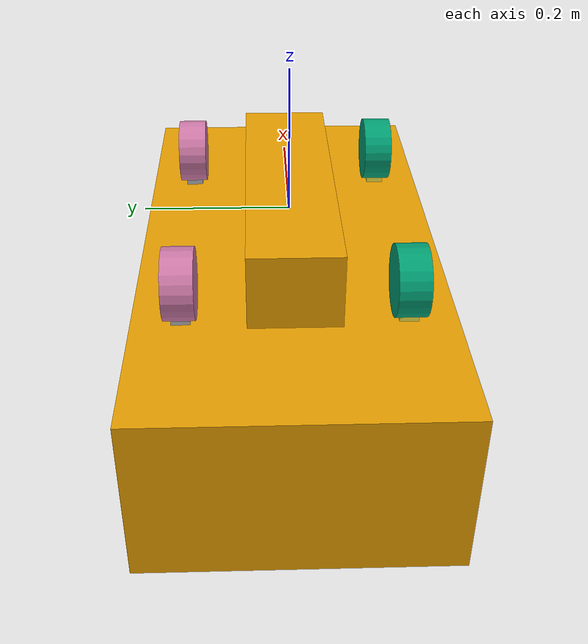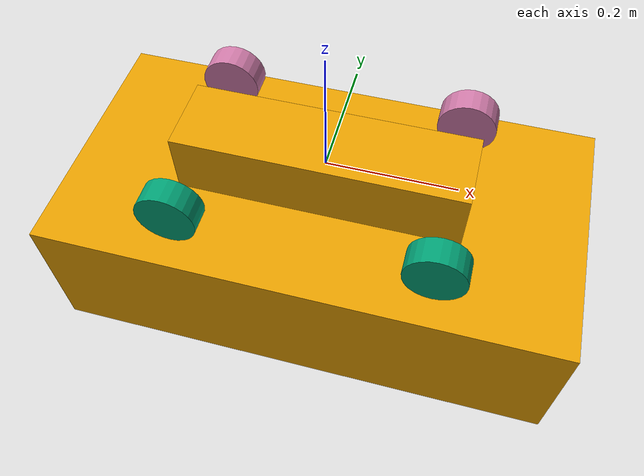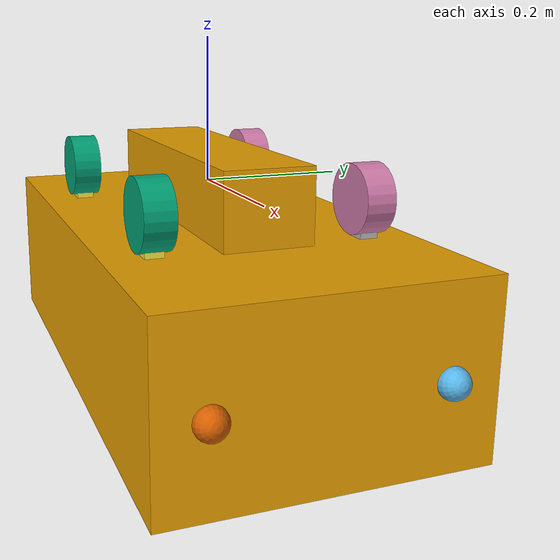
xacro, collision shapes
<?xml version="1.0"?>
<robot name="go2" xmlns:xacro="http://www.ros.org/wiki/xacro">

  <!-- Shared geometry: leg/joint constants, mesh materials, parametric leg macro. -->
  <xacro:include filename="$(find go2_description)/urdf/const.xacro"/>
  <xacro:include filename="$(find go2_description)/urdf/materials.xacro"/>
  <xacro:include filename="$(find go2_description)/urdf/leg.xacro"/>

  <!-- =======================================================================
       Physical constants
  ============================================================================ -->
  <xacro:property name="body_length"  value="0.440"/>   <!-- trunk X -->
  <xacro:property name="body_width"   value="0.060"/>   <!-- trunk half-width in Y -->
  <xacro:property name="body_height"  value="0.100"/>   <!-- trunk Z -->
  <xacro:property name="body_mass"    value="6.921"/>

  <!-- Full robot standing envelope including legs (Unitree Go2 official specs) -->
  <xacro:property name="stance_length"  value="0.700"/>  <!-- full X with legs -->
  <xacro:property name="stance_width"   value="0.310"/>  <!-- full Y with legs -->
  <xacro:property name="safety_length"  value="0.800"/>  <!-- +50 mm safety margin on each side -->
  <xacro:property name="safety_width"   value="0.410"/>  <!-- +50 mm safety margin on each side -->
  <xacro:property name="stance_height"  value="0.230"/>

  <!-- Nominal standing torso centre height from ground [m]. -->
  <xacro:property name="standing_height" value="0.28"/>

  <!-- Front-top sensor mount matching official Unitree Go2 radar_joint -->
  <xacro:property name="lidar_x" value="0.28945"/>
  <xacro:property name="lidar_y" value="0.0"/>
  <xacro:property name="lidar_z" value="-0.046825"/>
  <!-- Real Unitree driver frame measured from /utlidar/cloud to /utlidar/cloud_base. -->
  <xacro:property name="lidar_r" value="0.0"/>
  <xacro:property name="lidar_p" value="2.88000012056847"/>
  <xacro:property name="lidar_yaw" value="0.0"/>

  <link name="base_link">
    <collision>
      <origin xyz="0 0 0" rpy="0 0 0"/>
      <geometry>
        <!-- Rigid body torso footprint (full standing envelope is via the
             safety collision below and nav2 footprint parameters). -->
        <box size="${body_length} ${body_width*2} ${body_height}"/>
      </geometry>
    </collision>
    <!-- Safety envelope used by collision consumers that inspect URDF collision geometry. -->
    <collision>
      <origin xyz="0 0 ${-(standing_height - stance_height/2)}" rpy="0 0 0"/>
      <geometry>
        <box size="${safety_length} ${safety_width} ${stance_height}"/>
      </geometry>
    </collision>
  </link>

  <joint name="floating_base" type="fixed">
    <parent link="base_link"/>
    <child  link="trunk"/>
    <origin xyz="0 0 0" rpy="0 0 0"/>
  </joint>

  <link name="trunk">
    <visual>
      <origin xyz="0 0 0" rpy="0 0 0"/>
      <geometry>
        <mesh filename="package://go2_description/meshes/dae/base.dae" scale="1 1 1"/>
      </geometry>
    </visual>
    <inertial>
      <origin xyz="${trunk_com_x} ${trunk_com_y} ${trunk_com_z}" rpy="0 0 0"/>
      <mass value="${trunk_mass}"/>
      <inertia ixx="${trunk_ixx}" ixy="${trunk_ixy}" ixz="${trunk_ixz}"
               iyy="${trunk_iyy}" iyz="${trunk_iyz}"
               izz="${trunk_izz}"/>
    </inertial>
  </link>

  <xacro:leg name="rf" mirror="-1" mirror_dae="False" front_hind="1"  front_hind_dae="True"  parent="trunk" with_ros2_control="False"/>
  <xacro:leg name="lf" mirror="1"  mirror_dae="True"  front_hind="1"  front_hind_dae="True"  parent="trunk" with_ros2_control="False"/>
  <xacro:leg name="rh" mirror="-1" mirror_dae="False" front_hind="-1" front_hind_dae="False" parent="trunk" with_ros2_control="False"/>
  <xacro:leg name="lh" mirror="1"  mirror_dae="True"  front_hind="-1" front_hind_dae="False" parent="trunk" with_ros2_control="False"/>

  <joint name="base_link_to_imu" type="fixed">
    <parent link="base_link"/>
    <child  link="imu_link"/>
    <origin xyz="0 0 0" rpy="0 0 0"/>
  </joint>

  <link name="imu_link">
    <inertial>
      <mass value="0.001"/>
      <origin xyz="0 0 0" rpy="0 0 0"/>
      <inertia ixx="1e-7" ixy="0" ixz="0" iyy="1e-7" iyz="0" izz="1e-7"/>
    </inertial>
  </link>

  <joint name="base_link_to_lidar" type="fixed">
    <parent link="base_link"/>
    <child  link="lidar_link"/>
    <origin xyz="${lidar_x} ${lidar_y} ${lidar_z}" rpy="${lidar_r} ${lidar_p} ${lidar_yaw}"/>
  </joint>

  <link name="lidar_link">
    <visual>
      <origin xyz="0 0 0" rpy="0 0 0"/>
      <geometry>
        <cylinder radius="0.04" length="0.06"/>
      </geometry>
      <material name="lidar_black">
        <color rgba="0.05 0.05 0.05 1.0"/>
      </material>
    </visual>
    <inertial>
      <mass value="0.001"/>
      <origin xyz="0 0 0" rpy="0 0 0"/>
      <inertia ixx="1e-7" ixy="0" ixz="0" iyy="1e-7" iyz="0" izz="1e-7"/>
    </inertial>
  </link>

  <joint name="lidar_to_lidar_imu" type="fixed">
    <parent link="lidar_link"/>
    <child  link="lidar_imu_link"/>
    <origin xyz="-0.007698 -0.014655 0.00667" rpy="0 0 0"/>
  </joint>

  <link name="lidar_imu_link">
    <inertial>
      <mass value="0.001"/>
      <origin xyz="0 0 0" rpy="0 0 0"/>
      <inertia ixx="1e-7" ixy="0" ixz="0" iyy="1e-7" iyz="0" izz="1e-7"/>
    </inertial>
  </link>

</robot>

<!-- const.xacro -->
<robot xmlns:xacro="http://www.ros.org/wiki/xacro">

    <!-- ──── Numeric constant ──── -->
    <xacro:property name="PI" value="3.1415926535897931"/>
    <xacro:property name="stick_mass" value="0.00001"/>

    <!-- ──── Simplified collision geometry ──── -->
    <xacro:property name="trunk_width"  value="0.0935"/>
    <xacro:property name="trunk_length" value="0.3762"/>
    <xacro:property name="trunk_height" value="0.114"/>
    <xacro:property name="hip_radius"   value="0.046"/>
    <xacro:property name="hip_length"   value="0.04"/>
    <xacro:property name="thigh_shoulder_radius" value="0.041"/>
    <xacro:property name="thigh_shoulder_length" value="0.032"/>
    <xacro:property name="thigh_width"  value="0.0245"/>
    <xacro:property name="thigh_height" value="0.034"/>
    <xacro:property name="calf_width"   value="0.016"/>
    <xacro:property name="calf_height"  value="0.016"/>
    <xacro:property name="foot_radius"  value="0.02"/>
    <xacro:property name="stick_radius" value="0.01"/>
    <xacro:property name="stick_length" value="0.2"/>

    <!-- ──── Kinematic lengths ──── -->
    <xacro:property name="thigh_offset" value="0.0955"/>
    <xacro:property name="thigh_length" value="0.213"/>
    <xacro:property name="calf_length"  value="0.213"/>

    <!-- ──── Leg offsets from trunk centre ──── -->
    <xacro:property name="leg_offset_x" value="0.1934"/>
    <xacro:property name="leg_offset_y" value="0.0465"/>
    <xacro:property name="hip_offset"   value="0.0955"/>

    <!-- Explicit per-axis offsets (redundant with above, kept for readability) -->
    <xacro:property name="hip_offset_x" value="0.1934"/>
    <xacro:property name="hip_offset_y" value="0.0465"/>
    <xacro:property name="hip_offset_z" value="0.0"/>

    <xacro:property name="thigh_offset_x" value="0"/>
    <xacro:property name="thigh_offset_y" value="0.0955"/>
    <xacro:property name="thigh_offset_z" value="0.0"/>

    <xacro:property name="calf_offset_x" value="0.0"/>
    <xacro:property name="calf_offset_y" value="0.0"/>
    <xacro:property name="calf_offset_z" value="-0.213"/>

    <!-- ──── Joint limits ──── -->
    <xacro:property name="damping"  value="0.01"/>
    <xacro:property name="friction" value="0.2"/>

    <xacro:property name="hip_position_max"   value="1.0472"/>
    <xacro:property name="hip_position_min"   value="-1.0472"/>
    <xacro:property name="hip_velocity_max"   value="30.1"/>
    <xacro:property name="hip_torque_max"     value="23.7"/>

    <xacro:property name="thigh_position_max" value="3.4907"/>
    <xacro:property name="thigh_position_min" value="-1.5708"/>
    <xacro:property name="thigh_velocity_max" value="30.1"/>
    <xacro:property name="thigh_torque_max"   value="23.7"/>

    <xacro:property name="calf_position_max"  value="-0.83776"/>
    <xacro:property name="calf_position_min"  value="-2.7227"/>
    <xacro:property name="calf_velocity_max"  value="20.06"/>
    <xacro:property name="calf_torque_max"    value="35.55"/>

    <!-- ──── Inertial values ──── -->
    <!-- trunk -->
    <xacro:property name="trunk_mass"  value="6.921"/>
    <xacro:property name="trunk_com_x" value="0.021112"/>
    <xacro:property name="trunk_com_y" value="0.00"/>
    <xacro:property name="trunk_com_z" value="-0.005366"/>
    <xacro:property name="trunk_ixx"   value="0.02448"/>
    <xacro:property name="trunk_ixy"   value="0.00012166"/>
    <xacro:property name="trunk_ixz"   value="0.0014849"/>
    <xacro:property name="trunk_iyy"   value="0.098077"/>
    <xacro:property name="trunk_iyz"   value="-3.12E-05"/>
    <xacro:property name="trunk_izz"   value="0.107"/>

    <!-- hip (left-front reference; mirroring applied in leg macro) -->
    <xacro:property name="hip_mass"   value="0.678"/>
    <xacro:property name="hip_com_x"  value="-0.0054"/>
    <xacro:property name="hip_com_y"  value="0.00194"/>
    <xacro:property name="hip_com_z"  value="-0.000105"/>
    <xacro:property name="hip_ixx"    value="0.00048"/>
    <xacro:property name="hip_ixy"    value="-3.01E-06"/>
    <xacro:property name="hip_ixz"    value="1.11E-06"/>
    <xacro:property name="hip_iyy"    value="0.000884"/>
    <xacro:property name="hip_iyz"    value="-1.42E-06"/>
    <xacro:property name="hip_izz"    value="0.000596"/>

    <!-- thigh -->
    <xacro:property name="thigh_mass"  value="1.152"/>
    <xacro:property name="thigh_com_x" value="-0.00374"/>
    <xacro:property name="thigh_com_y" value="-0.0223"/>
    <xacro:property name="thigh_com_z" value="-0.0327"/>
    <xacro:property name="thigh_ixx"   value="0.00584"/>
    <xacro:property name="thigh_ixy"   value="8.72E-05"/>
    <xacro:property name="thigh_ixz"   value="-0.000289"/>
    <xacro:property name="thigh_iyy"   value="0.0058"/>
    <xacro:property name="thigh_iyz"   value="0.000808"/>
    <xacro:property name="thigh_izz"   value="0.00103"/>

    <!-- calf -->
    <xacro:property name="calf_mass"   value="0.154"/>
    <xacro:property name="calf_com_x"  value="0.00548"/>
    <xacro:property name="calf_com_y"  value="-0.000975"/>
    <xacro:property name="calf_com_z"  value="-0.115"/>
    <xacro:property name="calf_ixx"    value="0.00108"/>
    <xacro:property name="calf_ixy"    value="3.4E-07"/>
    <xacro:property name="calf_ixz"    value="1.72E-05"/>
    <xacro:property name="calf_iyy"    value="0.0011"/>
    <xacro:property name="calf_iyz"    value="8.28E-06"/>
    <xacro:property name="calf_izz"    value="3.29E-05"/>

    <!-- foot -->
    <xacro:property name="foot_mass" value="0.06"/>

</robot>

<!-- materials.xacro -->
<!--
  materials.xacro
  URDF material definitions for the Unitree Go2.

  Source: khaledgabr77/unitree_go2_ros2 / unitree_go2_description/urdf/materials.xacro
  Ported verbatim — no changes.
-->
<robot>

    <material name="black">
        <color rgba="0.0 0.0 0.0 1.0"/>
    </material>

    <material name="blue">
        <color rgba="0.0 0.0 0.8 1.0"/>
    </material>

    <material name="green">
        <color rgba="0.0 0.8 0.0 1.0"/>
    </material>

    <material name="grey">
        <color rgba="0.2 0.2 0.2 0.0"/>
    </material>

    <material name="silver">
        <color rgba="${233/255} ${233/255} ${216/255} 1.0"/>
    </material>

    <material name="orange">
        <color rgba="${255/255} ${108/255} ${10/255} 1.0"/>
    </material>

    <material name="brown">
        <color rgba="${222/255} ${207/255} ${195/255} 1.0"/>
    </material>

    <material name="red">
        <color rgba="0.8 0.0 0.0 1.0"/>
    </material>

    <material name="white">
        <color rgba="1.0 1.0 1.0 1.0"/>
    </material>

</robot>

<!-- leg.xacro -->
<robot xmlns:xacro="http://www.ros.org/wiki/xacro">

    <xacro:macro name="leg" params="name mirror mirror_dae front_hind front_hind_dae parent:=^|'trunk' with_ros2_control:=^|False">

        <!-- Derive CHAMP-convention foot link name from leg prefix -->
        <xacro:if value="${name == 'lf'}">
            <xacro:property name="foot_link_name" value="LF_FOOT"/>
        </xacro:if>
        <xacro:if value="${name == 'rf'}">
            <xacro:property name="foot_link_name" value="RF_FOOT"/>
        </xacro:if>
        <xacro:if value="${name == 'lh'}">
            <xacro:property name="foot_link_name" value="LH_FOOT"/>
        </xacro:if>
        <xacro:if value="${name == 'rh'}">
            <xacro:property name="foot_link_name" value="RH_FOOT"/>
        </xacro:if>

        <!-- ── Hip joint ── -->
        <joint name="${name}_hip_joint" type="revolute">
            <xacro:if value="${(mirror_dae == False) and (front_hind_dae == True)}">
                <origin rpy="0 0 0" xyz="${leg_offset_x} ${-leg_offset_y} 0"/>
            </xacro:if>
            <xacro:if value="${(mirror_dae == True) and (front_hind_dae == True)}">
                <origin rpy="0 0 0" xyz="${leg_offset_x} ${leg_offset_y} 0"/>
            </xacro:if>
            <xacro:if value="${(mirror_dae == False) and (front_hind_dae == False)}">
                <origin rpy="0 0 0" xyz="${-leg_offset_x} ${-leg_offset_y} 0"/>
            </xacro:if>
            <xacro:if value="${(mirror_dae == True) and (front_hind_dae == False)}">
                <origin rpy="0 0 0" xyz="${-leg_offset_x} ${leg_offset_y} 0"/>
            </xacro:if>
            <parent link="${parent}"/>
            <child link="${name}_hip_link"/>
            <axis xyz="1 0 0"/>
            <dynamics damping="${damping}" friction="${friction}"/>
            <xacro:if value="${(mirror_dae == True)}">
                <limit effort="${hip_torque_max}" velocity="${hip_velocity_max}"
                       lower="${hip_position_min}" upper="${hip_position_max}"/>
            </xacro:if>
            <xacro:if value="${(mirror_dae == False)}">
                <limit effort="${hip_torque_max}" velocity="${hip_velocity_max}"
                       lower="${-hip_position_max}" upper="${-hip_position_min}"/>
            </xacro:if>
        </joint>

        <!-- ── Hip link ── -->
        <link name="${name}_hip_link">
            <visual>
                <xacro:if value="${(mirror_dae == True) and (front_hind_dae == True)}">
                    <origin rpy="0 0 0" xyz="0 0 0"/>
                </xacro:if>
                <xacro:if value="${(mirror_dae == False) and (front_hind_dae == True)}">
                    <origin rpy="${PI} 0 0" xyz="0 0 0"/>
                </xacro:if>
                <xacro:if value="${(mirror_dae == True) and (front_hind_dae == False)}">
                    <origin rpy="0 ${PI} 0" xyz="0 0 0"/>
                </xacro:if>
                <xacro:if value="${(mirror_dae == False) and (front_hind_dae == False)}">
                    <origin rpy="${PI} ${PI} 0" xyz="0 0 0"/>
                </xacro:if>
                <geometry>
                    <mesh filename="package://go2_description/meshes/dae/hip.dae" scale="1 1 1"/>
                </geometry>
            </visual>
            <collision>
                <origin rpy="${PI/2.0} 0 0" xyz="0 ${hip_offset*mirror} 0"/>
                <geometry>
                    <cylinder length="${hip_length}" radius="${hip_radius}"/>
                </geometry>
            </collision>
            <inertial>
                <origin rpy="0 0 0"
                        xyz="${hip_com_x*front_hind} ${hip_com_y*mirror} ${hip_com_z}"/>
                <mass value="${hip_mass}"/>
                <inertia
                    ixx="${hip_ixx}"
                    ixy="${hip_ixy*mirror*front_hind}"
                    ixz="${hip_ixz*front_hind}"
                    iyy="${hip_iyy}"
                    iyz="${hip_iyz*mirror}"
                    izz="${hip_izz}"/>
            </inertial>
        </link>

        <!-- ── Upper leg joint ── -->
        <joint name="${name}_upper_leg_joint" type="revolute">
            <origin rpy="0 0 0" xyz="0 ${thigh_offset*mirror} 0"/>
            <parent link="${name}_hip_link"/>
            <child link="${name}_upper_leg_link"/>
            <axis xyz="0 1 0"/>
            <dynamics damping="${damping}" friction="${friction}"/>
            <limit effort="${thigh_torque_max}" velocity="${thigh_velocity_max}"
                   lower="${thigh_position_min}" upper="${thigh_position_max}"/>
        </joint>

        <!-- ── Upper leg link ── -->
        <link name="${name}_upper_leg_link">
            <visual>
                <origin rpy="0 0 0" xyz="0 0 0"/>
                <geometry>
                    <xacro:if value="${mirror_dae == True}">
                        <mesh filename="package://go2_description/meshes/dae/thigh.dae" scale="1 1 1"/>
                    </xacro:if>
                    <xacro:if value="${mirror_dae == False}">
                        <mesh filename="package://go2_description/meshes/dae/thigh_mirror.dae" scale="1 1 1"/>
                    </xacro:if>
                </geometry>
            </visual>
            <collision>
                <origin rpy="0 ${PI/2.0} 0" xyz="0 0 ${-thigh_length/2.0}"/>
                <geometry>
                    <box size="${thigh_length} ${thigh_width} ${thigh_height}"/>
                </geometry>
            </collision>
            <inertial>
                <origin rpy="0 0 0"
                        xyz="${thigh_com_x} ${thigh_com_y*mirror} ${thigh_com_z}"/>
                <mass value="${thigh_mass}"/>
                <inertia
                    ixx="${thigh_ixx}"
                    ixy="${thigh_ixy*mirror}"
                    ixz="${thigh_ixz}"
                    iyy="${thigh_iyy}"
                    iyz="${thigh_iyz*mirror}"
                    izz="${thigh_izz}"/>
            </inertial>
        </link>

        <!-- ── Lower leg joint ── -->
        <joint name="${name}_lower_leg_joint" type="revolute">
            <origin rpy="0 0 0" xyz="0 0 ${-thigh_length}"/>
            <parent link="${name}_upper_leg_link"/>
            <child link="${name}_lower_leg_link"/>
            <axis xyz="0 1 0"/>
            <dynamics damping="${damping}" friction="${friction}"/>
            <limit effort="${calf_torque_max}" velocity="${calf_velocity_max}"
                   lower="${calf_position_min}" upper="${calf_position_max}"/>
        </joint>

        <!-- ── Lower leg link ── -->
        <link name="${name}_lower_leg_link">
            <visual>
                <origin rpy="0 0 0" xyz="0 0 0"/>
                <geometry>
                    <mesh filename="package://go2_description/meshes/dae/calf.dae" scale="1 1 1"/>
                </geometry>
            </visual>
            <collision>
                <origin rpy="0 ${PI/2.0} 0" xyz="0 0 ${-calf_length/2.0}"/>
                <geometry>
                    <box size="${calf_length} ${calf_width} ${calf_height}"/>
                </geometry>
            </collision>
            <inertial>
                <origin rpy="0 0 0"
                        xyz="${calf_com_x} ${calf_com_y} ${calf_com_z}"/>
                <mass value="${calf_mass}"/>
                <inertia
                    ixx="${calf_ixx}"
                    ixy="${calf_ixy}"
                    ixz="${calf_ixz}"
                    iyy="${calf_iyy}"
                    iyz="${calf_iyz}"
                    izz="${calf_izz}"/>
            </inertial>
        </link>

        <!-- ── Foot joint  (child = CHAMP uppercase foot link name) ── -->
        <joint name="${name}_foot_joint" type="fixed">
            <origin rpy="0 0 0" xyz="0 0 ${-(calf_length)}"/>
            <parent link="${name}_lower_leg_link"/>
            <child link="${foot_link_name}"/>
        </joint>

        <!-- ── Foot link  (CHAMP-convention uppercase name) ── -->
        <link name="${foot_link_name}">
            <visual>
                <origin rpy="0 0 0" xyz="0 0 0"/>
                <geometry>
                    <sphere radius="${foot_radius-0.01}"/>
                </geometry>
            </visual>
            <collision>
                <origin rpy="0 0 0" xyz="0 0 0"/>
                <geometry>
                    <sphere radius="${foot_radius}"/>
                </geometry>
            </collision>
            <inertial>
                <mass value="${foot_mass}"/>
                <inertia
                    ixx="${(2*foot_mass)/5.0*(foot_radius*foot_radius)}"
                    ixy="0.0" ixz="0.0"
                    iyy="${(2*foot_mass)/5.0*(foot_radius*foot_radius)}"
                    iyz="0.0"
                    izz="${(2*foot_mass)/5.0*(foot_radius*foot_radius)}"/>
            </inertial>
        </link>

        <!-- Gazebo-only ros2_control block (gated; hardware URDF omits it). -->
        <xacro:if value="${with_ros2_control == True}">
            <ros2_control name="${name}" type="system">
                <hardware>
                    <plugin>ign_ros2_control/IgnitionSystem</plugin>
                </hardware>
                <joint name="${name}_hip_joint">
                    <command_interface name="effort"/>
                    <state_interface name="position"/>
                    <state_interface name="velocity"/>
                </joint>
                <joint name="${name}_upper_leg_joint">
                    <command_interface name="effort"/>
                    <state_interface name="position"/>
                    <state_interface name="velocity"/>
                </joint>
                <joint name="${name}_lower_leg_joint">
                    <command_interface name="effort"/>
                    <state_interface name="position"/>
                    <state_interface name="velocity"/>
                </joint>
            </ros2_control>
        </xacro:if>

    </xacro:macro>

</robot>
